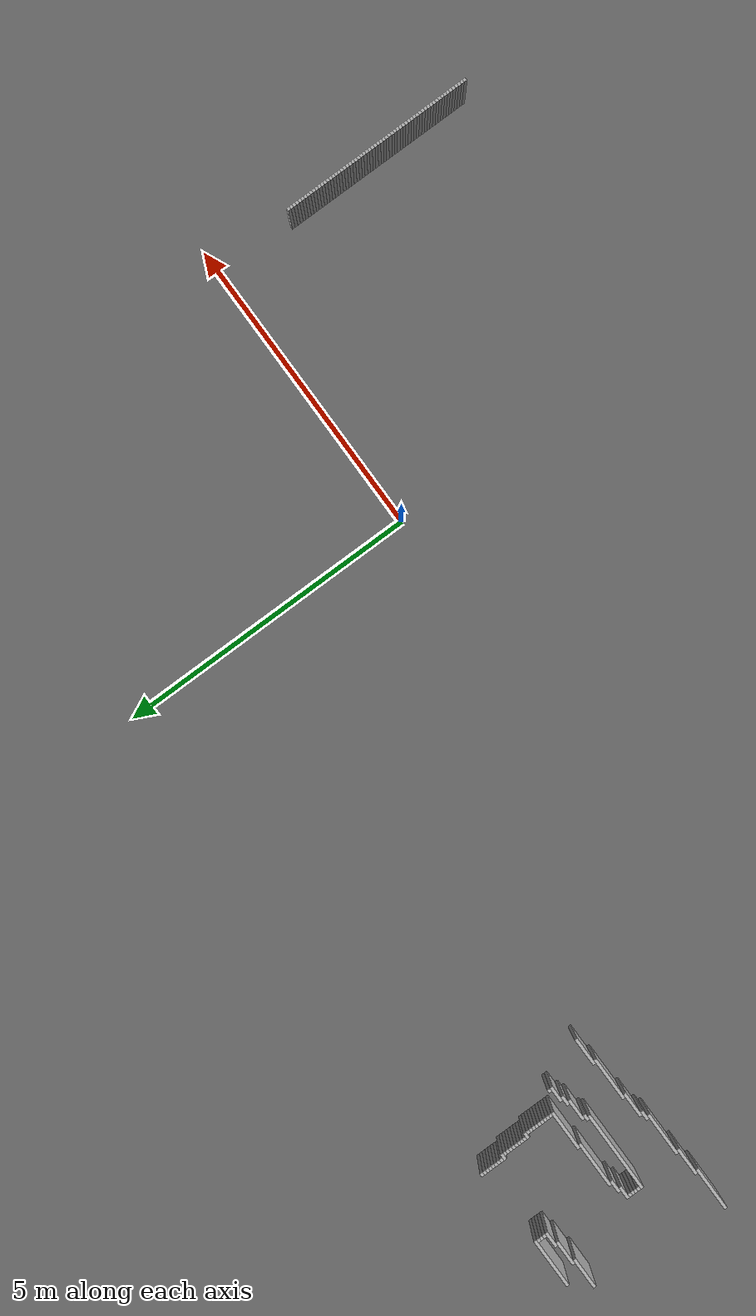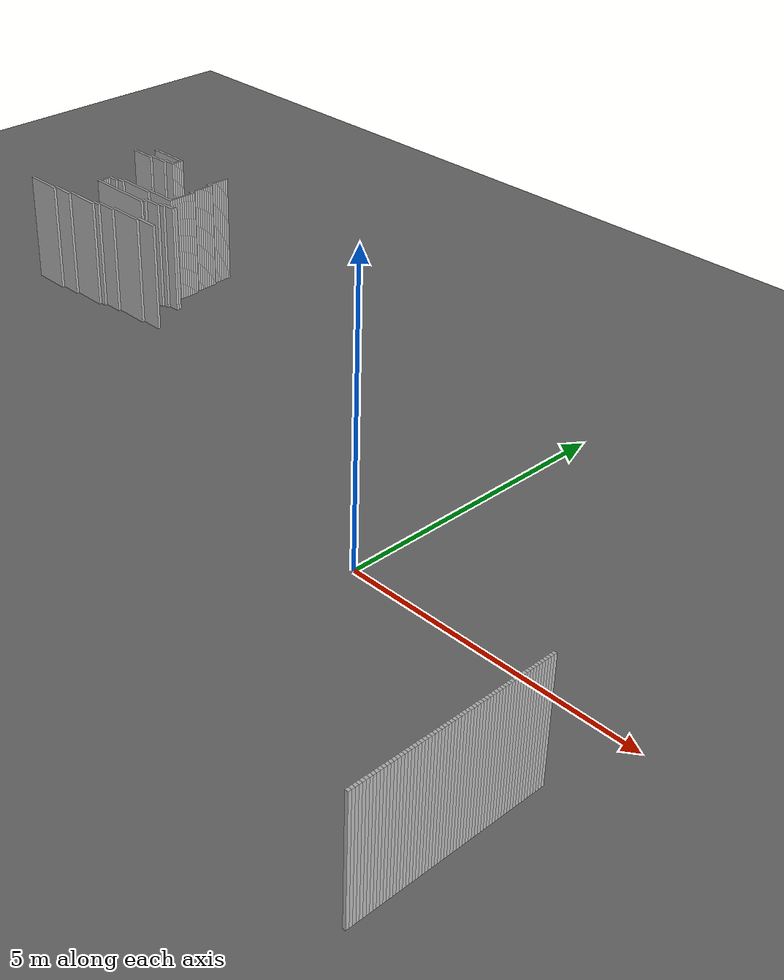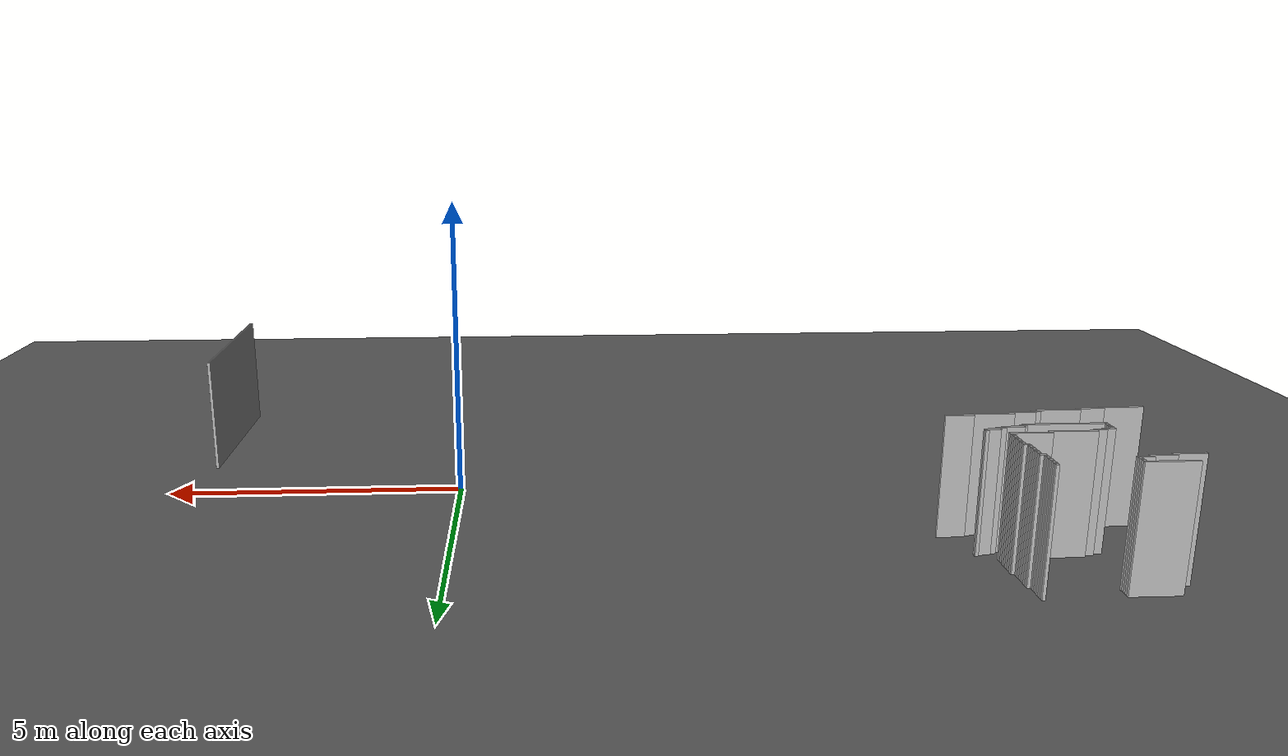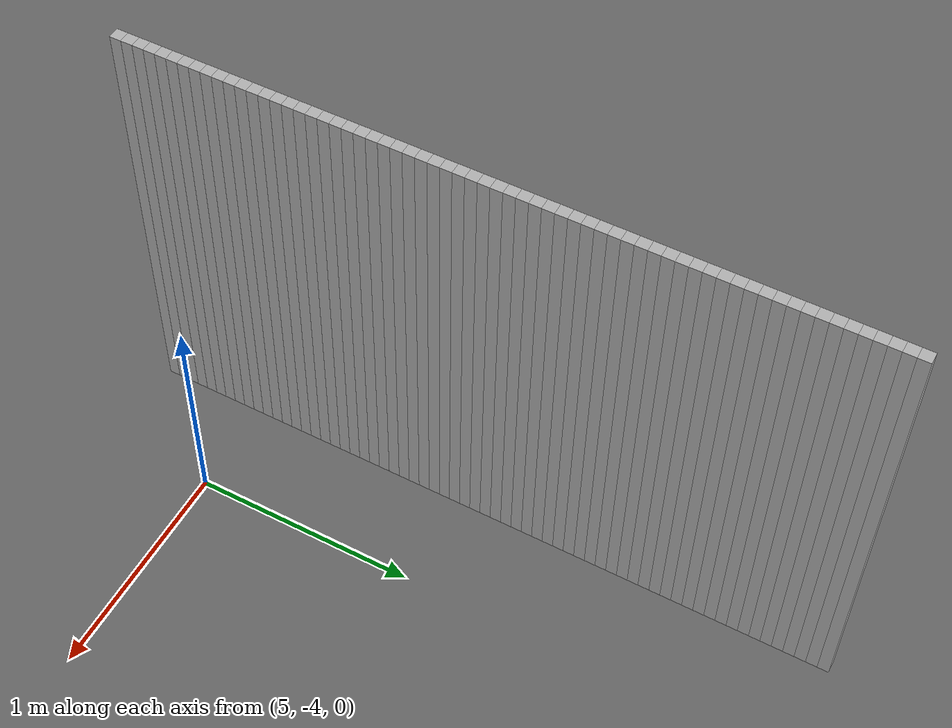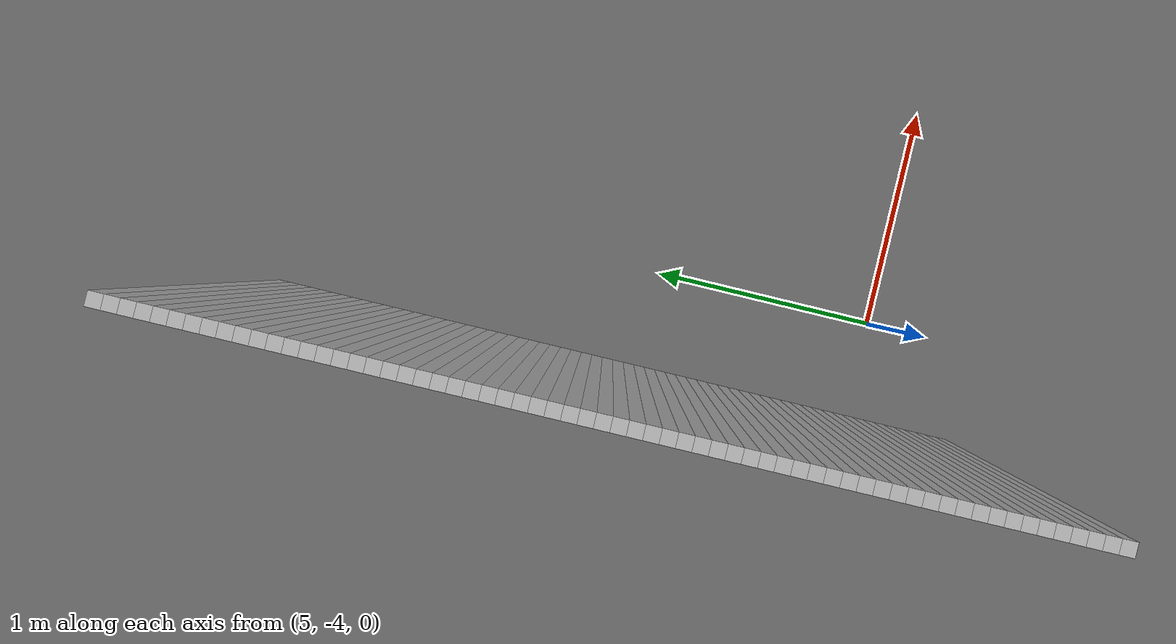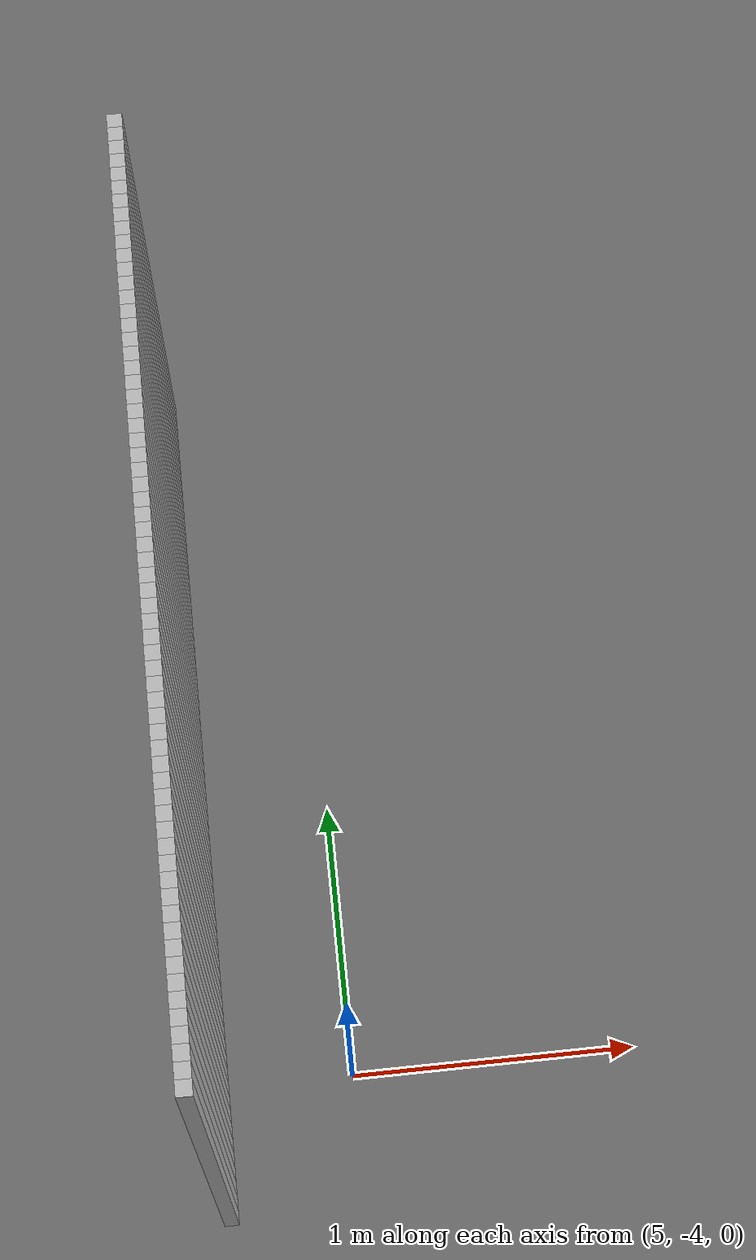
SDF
<sdf version="1.8">
 <world name="real_map">
  <model name="ground">
   <static>true</static>
   <link name="l">
    <collision name="c"><geometry><plane><normal>0 0 1</normal><size>100 100</size></plane></geometry></collision>
    <visual name="v">
     <geometry><plane><normal>0 0 1</normal><size>100 100</size></plane></geometry>
     <material><ambient>0.3 0.3 0.3 1</ambient><diffuse>0.4 0.4 0.4 1</diffuse></material>
    </visual>
   </link>
  </model>
  <model name="walls">
   <static>true</static>
   <link name="w840">
    <pose>-8.366 4.692 1.000 0 0 0</pose>
    <collision name="c"><geometry><box><size>0.050 0.050 2.000</size></box></geometry></collision>
    <visual name="v">
     <geometry><box><size>0.050 0.050 2.000</size></box></geometry>
     <material><ambient>0.7 0.7 0.7 1</ambient><diffuse>0.7 0.7 0.7 1</diffuse></material>
    </visual>
   </link>
   <link name="w844">
    <pose>-9.991 4.642 1.000 0 0 0</pose>
    <collision name="c"><geometry><box><size>0.800 0.050 2.000</size></box></geometry></collision>
    <visual name="v">
     <geometry><box><size>0.800 0.050 2.000</size></box></geometry>
     <material><ambient>0.7 0.7 0.7 1</ambient><diffuse>0.7 0.7 0.7 1</diffuse></material>
    </visual>
   </link>
   <link name="w845">
    <pose>-8.366 4.642 1.000 0 0 0</pose>
    <collision name="c"><geometry><box><size>0.050 0.050 2.000</size></box></geometry></collision>
    <visual name="v">
     <geometry><box><size>0.050 0.050 2.000</size></box></geometry>
     <material><ambient>0.7 0.7 0.7 1</ambient><diffuse>0.7 0.7 0.7 1</diffuse></material>
    </visual>
   </link>
   <link name="w851">
    <pose>-9.616 4.592 1.000 0 0 0</pose>
    <collision name="c"><geometry><box><size>0.050 0.050 2.000</size></box></geometry></collision>
    <visual name="v">
     <geometry><box><size>0.050 0.050 2.000</size></box></geometry>
     <material><ambient>0.7 0.7 0.7 1</ambient><diffuse>0.7 0.7 0.7 1</diffuse></material>
    </visual>
   </link>
   <link name="w852">
    <pose>-8.366 4.592 1.000 0 0 0</pose>
    <collision name="c"><geometry><box><size>0.050 0.050 2.000</size></box></geometry></collision>
    <visual name="v">
     <geometry><box><size>0.050 0.050 2.000</size></box></geometry>
     <material><ambient>0.7 0.7 0.7 1</ambient><diffuse>0.7 0.7 0.7 1</diffuse></material>
    </visual>
   </link>
   <link name="w857">
    <pose>-9.616 4.542 1.000 0 0 0</pose>
    <collision name="c"><geometry><box><size>0.050 0.050 2.000</size></box></geometry></collision>
    <visual name="v">
     <geometry><box><size>0.050 0.050 2.000</size></box></geometry>
     <material><ambient>0.7 0.7 0.7 1</ambient><diffuse>0.7 0.7 0.7 1</diffuse></material>
    </visual>
   </link>
   <link name="w858">
    <pose>-8.366 4.542 1.000 0 0 0</pose>
    <collision name="c"><geometry><box><size>0.050 0.050 2.000</size></box></geometry></collision>
    <visual name="v">
     <geometry><box><size>0.050 0.050 2.000</size></box></geometry>
     <material><ambient>0.7 0.7 0.7 1</ambient><diffuse>0.7 0.7 0.7 1</diffuse></material>
    </visual>
   </link>
   <link name="w861">
    <pose>-9.616 4.492 1.000 0 0 0</pose>
    <collision name="c"><geometry><box><size>0.050 0.050 2.000</size></box></geometry></collision>
    <visual name="v">
     <geometry><box><size>0.050 0.050 2.000</size></box></geometry>
     <material><ambient>0.7 0.7 0.7 1</ambient><diffuse>0.7 0.7 0.7 1</diffuse></material>
    </visual>
   </link>
   <link name="w862">
    <pose>-8.366 4.492 1.000 0 0 0</pose>
    <collision name="c"><geometry><box><size>0.050 0.050 2.000</size></box></geometry></collision>
    <visual name="v">
     <geometry><box><size>0.050 0.050 2.000</size></box></geometry>
     <material><ambient>0.7 0.7 0.7 1</ambient><diffuse>0.7 0.7 0.7 1</diffuse></material>
    </visual>
   </link>
   <link name="w865">
    <pose>-9.716 4.442 1.000 0 0 0</pose>
    <collision name="c"><geometry><box><size>0.250 0.050 2.000</size></box></geometry></collision>
    <visual name="v">
     <geometry><box><size>0.250 0.050 2.000</size></box></geometry>
     <material><ambient>0.7 0.7 0.7 1</ambient><diffuse>0.7 0.7 0.7 1</diffuse></material>
    </visual>
   </link>
   <link name="w866">
    <pose>-8.366 4.442 1.000 0 0 0</pose>
    <collision name="c"><geometry><box><size>0.050 0.050 2.000</size></box></geometry></collision>
    <visual name="v">
     <geometry><box><size>0.050 0.050 2.000</size></box></geometry>
     <material><ambient>0.7 0.7 0.7 1</ambient><diffuse>0.7 0.7 0.7 1</diffuse></material>
    </visual>
   </link>
   <link name="w869">
    <pose>-9.991 4.392 1.000 0 0 0</pose>
    <collision name="c"><geometry><box><size>0.400 0.050 2.000</size></box></geometry></collision>
    <visual name="v">
     <geometry><box><size>0.400 0.050 2.000</size></box></geometry>
     <material><ambient>0.7 0.7 0.7 1</ambient><diffuse>0.7 0.7 0.7 1</diffuse></material>
    </visual>
   </link>
   <link name="w870">
    <pose>-8.366 4.392 1.000 0 0 0</pose>
    <collision name="c"><geometry><box><size>0.050 0.050 2.000</size></box></geometry></collision>
    <visual name="v">
     <geometry><box><size>0.050 0.050 2.000</size></box></geometry>
     <material><ambient>0.7 0.7 0.7 1</ambient><diffuse>0.7 0.7 0.7 1</diffuse></material>
    </visual>
   </link>
   <link name="w873">
    <pose>-10.391 4.342 1.000 0 0 0</pose>
    <collision name="c"><geometry><box><size>0.500 0.050 2.000</size></box></geometry></collision>
    <visual name="v">
     <geometry><box><size>0.500 0.050 2.000</size></box></geometry>
     <material><ambient>0.7 0.7 0.7 1</ambient><diffuse>0.7 0.7 0.7 1</diffuse></material>
    </visual>
   </link>
   <link name="w874">
    <pose>-8.366 4.342 1.000 0 0 0</pose>
    <collision name="c"><geometry><box><size>0.050 0.050 2.000</size></box></geometry></collision>
    <visual name="v">
     <geometry><box><size>0.050 0.050 2.000</size></box></geometry>
     <material><ambient>0.7 0.7 0.7 1</ambient><diffuse>0.7 0.7 0.7 1</diffuse></material>
    </visual>
   </link>
   <link name="w878">
    <pose>-8.341 4.292 1.000 0 0 0</pose>
    <collision name="c"><geometry><box><size>0.100 0.050 2.000</size></box></geometry></collision>
    <visual name="v">
     <geometry><box><size>0.100 0.050 2.000</size></box></geometry>
     <material><ambient>0.7 0.7 0.7 1</ambient><diffuse>0.7 0.7 0.7 1</diffuse></material>
    </visual>
   </link>
   <link name="w882">
    <pose>-8.316 4.242 1.000 0 0 0</pose>
    <collision name="c"><geometry><box><size>0.050 0.050 2.000</size></box></geometry></collision>
    <visual name="v">
     <geometry><box><size>0.050 0.050 2.000</size></box></geometry>
     <material><ambient>0.7 0.7 0.7 1</ambient><diffuse>0.7 0.7 0.7 1</diffuse></material>
    </visual>
   </link>
   <link name="w886">
    <pose>-8.316 4.192 1.000 0 0 0</pose>
    <collision name="c"><geometry><box><size>0.050 0.050 2.000</size></box></geometry></collision>
    <visual name="v">
     <geometry><box><size>0.050 0.050 2.000</size></box></geometry>
     <material><ambient>0.7 0.7 0.7 1</ambient><diffuse>0.7 0.7 0.7 1</diffuse></material>
    </visual>
   </link>
   <link name="w890">
    <pose>-8.316 4.142 1.000 0 0 0</pose>
    <collision name="c"><geometry><box><size>0.050 0.050 2.000</size></box></geometry></collision>
    <visual name="v">
     <geometry><box><size>0.050 0.050 2.000</size></box></geometry>
     <material><ambient>0.7 0.7 0.7 1</ambient><diffuse>0.7 0.7 0.7 1</diffuse></material>
    </visual>
   </link>
   <link name="w894">
    <pose>-8.316 4.092 1.000 0 0 0</pose>
    <collision name="c"><geometry><box><size>0.050 0.050 2.000</size></box></geometry></collision>
    <visual name="v">
     <geometry><box><size>0.050 0.050 2.000</size></box></geometry>
     <material><ambient>0.7 0.7 0.7 1</ambient><diffuse>0.7 0.7 0.7 1</diffuse></material>
    </visual>
   </link>
   <link name="w898">
    <pose>-8.316 4.042 1.000 0 0 0</pose>
    <collision name="c"><geometry><box><size>0.050 0.050 2.000</size></box></geometry></collision>
    <visual name="v">
     <geometry><box><size>0.050 0.050 2.000</size></box></geometry>
     <material><ambient>0.7 0.7 0.7 1</ambient><diffuse>0.7 0.7 0.7 1</diffuse></material>
    </visual>
   </link>
   <link name="w902">
    <pose>-8.316 3.992 1.000 0 0 0</pose>
    <collision name="c"><geometry><box><size>0.050 0.050 2.000</size></box></geometry></collision>
    <visual name="v">
     <geometry><box><size>0.050 0.050 2.000</size></box></geometry>
     <material><ambient>0.7 0.7 0.7 1</ambient><diffuse>0.7 0.7 0.7 1</diffuse></material>
    </visual>
   </link>
   <link name="w906">
    <pose>-8.316 3.942 1.000 0 0 0</pose>
    <collision name="c"><geometry><box><size>0.050 0.050 2.000</size></box></geometry></collision>
    <visual name="v">
     <geometry><box><size>0.050 0.050 2.000</size></box></geometry>
     <material><ambient>0.7 0.7 0.7 1</ambient><diffuse>0.7 0.7 0.7 1</diffuse></material>
    </visual>
   </link>
   <link name="w910">
    <pose>-8.316 3.892 1.000 0 0 0</pose>
    <collision name="c"><geometry><box><size>0.050 0.050 2.000</size></box></geometry></collision>
    <visual name="v">
     <geometry><box><size>0.050 0.050 2.000</size></box></geometry>
     <material><ambient>0.7 0.7 0.7 1</ambient><diffuse>0.7 0.7 0.7 1</diffuse></material>
    </visual>
   </link>
   <link name="w914">
    <pose>-8.291 3.842 1.000 0 0 0</pose>
    <collision name="c"><geometry><box><size>0.100 0.050 2.000</size></box></geometry></collision>
    <visual name="v">
     <geometry><box><size>0.100 0.050 2.000</size></box></geometry>
     <material><ambient>0.7 0.7 0.7 1</ambient><diffuse>0.7 0.7 0.7 1</diffuse></material>
    </visual>
   </link>
   <link name="w918">
    <pose>-8.266 3.792 1.000 0 0 0</pose>
    <collision name="c"><geometry><box><size>0.050 0.050 2.000</size></box></geometry></collision>
    <visual name="v">
     <geometry><box><size>0.050 0.050 2.000</size></box></geometry>
     <material><ambient>0.7 0.7 0.7 1</ambient><diffuse>0.7 0.7 0.7 1</diffuse></material>
    </visual>
   </link>
   <link name="w922">
    <pose>-8.266 3.742 1.000 0 0 0</pose>
    <collision name="c"><geometry><box><size>0.050 0.050 2.000</size></box></geometry></collision>
    <visual name="v">
     <geometry><box><size>0.050 0.050 2.000</size></box></geometry>
     <material><ambient>0.7 0.7 0.7 1</ambient><diffuse>0.7 0.7 0.7 1</diffuse></material>
    </visual>
   </link>
   <link name="w926">
    <pose>-8.266 3.692 1.000 0 0 0</pose>
    <collision name="c"><geometry><box><size>0.050 0.050 2.000</size></box></geometry></collision>
    <visual name="v">
     <geometry><box><size>0.050 0.050 2.000</size></box></geometry>
     <material><ambient>0.7 0.7 0.7 1</ambient><diffuse>0.7 0.7 0.7 1</diffuse></material>
    </visual>
   </link>
   <link name="w930">
    <pose>-8.266 3.642 1.000 0 0 0</pose>
    <collision name="c"><geometry><box><size>0.050 0.050 2.000</size></box></geometry></collision>
    <visual name="v">
     <geometry><box><size>0.050 0.050 2.000</size></box></geometry>
     <material><ambient>0.7 0.7 0.7 1</ambient><diffuse>0.7 0.7 0.7 1</diffuse></material>
    </visual>
   </link>
   <link name="w934">
    <pose>-8.266 3.592 1.000 0 0 0</pose>
    <collision name="c"><geometry><box><size>0.050 0.050 2.000</size></box></geometry></collision>
    <visual name="v">
     <geometry><box><size>0.050 0.050 2.000</size></box></geometry>
     <material><ambient>0.7 0.7 0.7 1</ambient><diffuse>0.7 0.7 0.7 1</diffuse></material>
    </visual>
   </link>
   <link name="w938">
    <pose>-8.266 3.542 1.000 0 0 0</pose>
    <collision name="c"><geometry><box><size>0.050 0.050 2.000</size></box></geometry></collision>
    <visual name="v">
     <geometry><box><size>0.050 0.050 2.000</size></box></geometry>
     <material><ambient>0.7 0.7 0.7 1</ambient><diffuse>0.7 0.7 0.7 1</diffuse></material>
    </visual>
   </link>
   <link name="w942">
    <pose>-8.266 3.492 1.000 0 0 0</pose>
    <collision name="c"><geometry><box><size>0.050 0.050 2.000</size></box></geometry></collision>
    <visual name="v">
     <geometry><box><size>0.050 0.050 2.000</size></box></geometry>
     <material><ambient>0.7 0.7 0.7 1</ambient><diffuse>0.7 0.7 0.7 1</diffuse></material>
    </visual>
   </link>
   <link name="w946">
    <pose>-8.266 3.442 1.000 0 0 0</pose>
    <collision name="c"><geometry><box><size>0.050 0.050 2.000</size></box></geometry></collision>
    <visual name="v">
     <geometry><box><size>0.050 0.050 2.000</size></box></geometry>
     <material><ambient>0.7 0.7 0.7 1</ambient><diffuse>0.7 0.7 0.7 1</diffuse></material>
    </visual>
   </link>
   <link name="w950">
    <pose>-8.266 3.392 1.000 0 0 0</pose>
    <collision name="c"><geometry><box><size>0.050 0.050 2.000</size></box></geometry></collision>
    <visual name="v">
     <geometry><box><size>0.050 0.050 2.000</size></box></geometry>
     <material><ambient>0.7 0.7 0.7 1</ambient><diffuse>0.7 0.7 0.7 1</diffuse></material>
    </visual>
   </link>
   <link name="w954">
    <pose>-8.566 3.342 1.000 0 0 0</pose>
    <collision name="c"><geometry><box><size>0.650 0.050 2.000</size></box></geometry></collision>
    <visual name="v">
     <geometry><box><size>0.650 0.050 2.000</size></box></geometry>
     <material><ambient>0.7 0.7 0.7 1</ambient><diffuse>0.7 0.7 0.7 1</diffuse></material>
    </visual>
   </link>
   <link name="w958">
    <pose>-9.216 3.292 1.000 0 0 0</pose>
    <collision name="c"><geometry><box><size>0.750 0.050 2.000</size></box></geometry></collision>
    <visual name="v">
     <geometry><box><size>0.750 0.050 2.000</size></box></geometry>
     <material><ambient>0.7 0.7 0.7 1</ambient><diffuse>0.7 0.7 0.7 1</diffuse></material>
    </visual>
   </link>
   <link name="w962">
    <pose>-9.641 3.242 1.000 0 0 0</pose>
    <collision name="c"><geometry><box><size>0.200 0.050 2.000</size></box></geometry></collision>
    <visual name="v">
     <geometry><box><size>0.200 0.050 2.000</size></box></geometry>
     <material><ambient>0.7 0.7 0.7 1</ambient><diffuse>0.7 0.7 0.7 1</diffuse></material>
    </visual>
   </link>
   <link name="w966">
    <pose>-9.791 3.192 1.000 0 0 0</pose>
    <collision name="c"><geometry><box><size>0.200 0.050 2.000</size></box></geometry></collision>
    <visual name="v">
     <geometry><box><size>0.200 0.050 2.000</size></box></geometry>
     <material><ambient>0.7 0.7 0.7 1</ambient><diffuse>0.7 0.7 0.7 1</diffuse></material>
    </visual>
   </link>
   <link name="w967">
    <pose>-7.966 3.192 1.000 0 0 0</pose>
    <collision name="c"><geometry><box><size>0.050 0.050 2.000</size></box></geometry></collision>
    <visual name="v">
     <geometry><box><size>0.050 0.050 2.000</size></box></geometry>
     <material><ambient>0.7 0.7 0.7 1</ambient><diffuse>0.7 0.7 0.7 1</diffuse></material>
    </visual>
   </link>
   <link name="w971">
    <pose>-9.866 3.142 1.000 0 0 0</pose>
    <collision name="c"><geometry><box><size>0.050 0.050 2.000</size></box></geometry></collision>
    <visual name="v">
     <geometry><box><size>0.050 0.050 2.000</size></box></geometry>
     <material><ambient>0.7 0.7 0.7 1</ambient><diffuse>0.7 0.7 0.7 1</diffuse></material>
    </visual>
   </link>
   <link name="w972">
    <pose>-8.066 3.142 1.000 0 0 0</pose>
    <collision name="c"><geometry><box><size>0.250 0.050 2.000</size></box></geometry></collision>
    <visual name="v">
     <geometry><box><size>0.250 0.050 2.000</size></box></geometry>
     <material><ambient>0.7 0.7 0.7 1</ambient><diffuse>0.7 0.7 0.7 1</diffuse></material>
    </visual>
   </link>
   <link name="w976">
    <pose>-9.866 3.092 1.000 0 0 0</pose>
    <collision name="c"><geometry><box><size>0.050 0.050 2.000</size></box></geometry></collision>
    <visual name="v">
     <geometry><box><size>0.050 0.050 2.000</size></box></geometry>
     <material><ambient>0.7 0.7 0.7 1</ambient><diffuse>0.7 0.7 0.7 1</diffuse></material>
    </visual>
   </link>
   <link name="w977">
    <pose>-8.216 3.092 1.000 0 0 0</pose>
    <collision name="c"><geometry><box><size>0.150 0.050 2.000</size></box></geometry></collision>
    <visual name="v">
     <geometry><box><size>0.150 0.050 2.000</size></box></geometry>
     <material><ambient>0.7 0.7 0.7 1</ambient><diffuse>0.7 0.7 0.7 1</diffuse></material>
    </visual>
   </link>
   <link name="w981">
    <pose>-9.866 3.042 1.000 0 0 0</pose>
    <collision name="c"><geometry><box><size>0.050 0.050 2.000</size></box></geometry></collision>
    <visual name="v">
     <geometry><box><size>0.050 0.050 2.000</size></box></geometry>
     <material><ambient>0.7 0.7 0.7 1</ambient><diffuse>0.7 0.7 0.7 1</diffuse></material>
    </visual>
   </link>
   <link name="w982">
    <pose>-8.416 3.042 1.000 0 0 0</pose>
    <collision name="c"><geometry><box><size>0.350 0.050 2.000</size></box></geometry></collision>
    <visual name="v">
     <geometry><box><size>0.350 0.050 2.000</size></box></geometry>
     <material><ambient>0.7 0.7 0.7 1</ambient><diffuse>0.7 0.7 0.7 1</diffuse></material>
    </visual>
   </link>
   <link name="w986">
    <pose>-9.866 2.992 1.000 0 0 0</pose>
    <collision name="c"><geometry><box><size>0.050 0.050 2.000</size></box></geometry></collision>
    <visual name="v">
     <geometry><box><size>0.050 0.050 2.000</size></box></geometry>
     <material><ambient>0.7 0.7 0.7 1</ambient><diffuse>0.7 0.7 0.7 1</diffuse></material>
    </visual>
   </link>
   <link name="w987">
    <pose>-8.591 2.992 1.000 0 0 0</pose>
    <collision name="c"><geometry><box><size>0.100 0.050 2.000</size></box></geometry></collision>
    <visual name="v">
     <geometry><box><size>0.100 0.050 2.000</size></box></geometry>
     <material><ambient>0.7 0.7 0.7 1</ambient><diffuse>0.7 0.7 0.7 1</diffuse></material>
    </visual>
   </link>
   <link name="w991">
    <pose>-9.241 2.942 1.000 0 0 0</pose>
    <collision name="c"><geometry><box><size>1.300 0.050 2.000</size></box></geometry></collision>
    <visual name="v">
     <geometry><box><size>1.300 0.050 2.000</size></box></geometry>
     <material><ambient>0.7 0.7 0.7 1</ambient><diffuse>0.7 0.7 0.7 1</diffuse></material>
    </visual>
   </link>
   <link name="w1022">
    <pose>-7.816 2.442 1.000 0 0 0</pose>
    <collision name="c"><geometry><box><size>0.450 0.050 2.000</size></box></geometry></collision>
    <visual name="v">
     <geometry><box><size>0.450 0.050 2.000</size></box></geometry>
     <material><ambient>0.7 0.7 0.7 1</ambient><diffuse>0.7 0.7 0.7 1</diffuse></material>
    </visual>
   </link>
   <link name="w1026">
    <pose>-8.341 2.392 1.000 0 0 0</pose>
    <collision name="c"><geometry><box><size>0.700 0.050 2.000</size></box></geometry></collision>
    <visual name="v">
     <geometry><box><size>0.700 0.050 2.000</size></box></geometry>
     <material><ambient>0.7 0.7 0.7 1</ambient><diffuse>0.7 0.7 0.7 1</diffuse></material>
    </visual>
   </link>
   <link name="w1030">
    <pose>-8.841 2.342 1.000 0 0 0</pose>
    <collision name="c"><geometry><box><size>0.400 0.050 2.000</size></box></geometry></collision>
    <visual name="v">
     <geometry><box><size>0.400 0.050 2.000</size></box></geometry>
     <material><ambient>0.7 0.7 0.7 1</ambient><diffuse>0.7 0.7 0.7 1</diffuse></material>
    </visual>
   </link>
   <link name="w1034">
    <pose>-9.066 2.292 1.000 0 0 0</pose>
    <collision name="c"><geometry><box><size>0.150 0.050 2.000</size></box></geometry></collision>
    <visual name="v">
     <geometry><box><size>0.150 0.050 2.000</size></box></geometry>
     <material><ambient>0.7 0.7 0.7 1</ambient><diffuse>0.7 0.7 0.7 1</diffuse></material>
    </visual>
   </link>
   <link name="w1038">
    <pose>-9.441 2.242 1.000 0 0 0</pose>
    <collision name="c"><geometry><box><size>0.700 0.050 2.000</size></box></geometry></collision>
    <visual name="v">
     <geometry><box><size>0.700 0.050 2.000</size></box></geometry>
     <material><ambient>0.7 0.7 0.7 1</ambient><diffuse>0.7 0.7 0.7 1</diffuse></material>
    </visual>
   </link>
   <link name="w1042">
    <pose>-9.966 2.192 1.000 0 0 0</pose>
    <collision name="c"><geometry><box><size>0.450 0.050 2.000</size></box></geometry></collision>
    <visual name="v">
     <geometry><box><size>0.450 0.050 2.000</size></box></geometry>
     <material><ambient>0.7 0.7 0.7 1</ambient><diffuse>0.7 0.7 0.7 1</diffuse></material>
    </visual>
   </link>
   <link name="w1046">
    <pose>-10.491 2.142 1.000 0 0 0</pose>
    <collision name="c"><geometry><box><size>0.700 0.050 2.000</size></box></geometry></collision>
    <visual name="v">
     <geometry><box><size>0.700 0.050 2.000</size></box></geometry>
     <material><ambient>0.7 0.7 0.7 1</ambient><diffuse>0.7 0.7 0.7 1</diffuse></material>
    </visual>
   </link>
   <link name="w1188">
    <pose>4.534 -1.308 1.000 0 0 0</pose>
    <collision name="c"><geometry><box><size>0.050 0.050 2.000</size></box></geometry></collision>
    <visual name="v">
     <geometry><box><size>0.050 0.050 2.000</size></box></geometry>
     <material><ambient>0.7 0.7 0.7 1</ambient><diffuse>0.7 0.7 0.7 1</diffuse></material>
    </visual>
   </link>
   <link name="w1190">
    <pose>4.534 -1.358 1.000 0 0 0</pose>
    <collision name="c"><geometry><box><size>0.050 0.050 2.000</size></box></geometry></collision>
    <visual name="v">
     <geometry><box><size>0.050 0.050 2.000</size></box></geometry>
     <material><ambient>0.7 0.7 0.7 1</ambient><diffuse>0.7 0.7 0.7 1</diffuse></material>
    </visual>
   </link>
   <link name="w1192">
    <pose>4.534 -1.408 1.000 0 0 0</pose>
    <collision name="c"><geometry><box><size>0.050 0.050 2.000</size></box></geometry></collision>
    <visual name="v">
     <geometry><box><size>0.050 0.050 2.000</size></box></geometry>
     <material><ambient>0.7 0.7 0.7 1</ambient><diffuse>0.7 0.7 0.7 1</diffuse></material>
    </visual>
   </link>
   <link name="w1194">
    <pose>4.534 -1.458 1.000 0 0 0</pose>
    <collision name="c"><geometry><box><size>0.050 0.050 2.000</size></box></geometry></collision>
    <visual name="v">
     <geometry><box><size>0.050 0.050 2.000</size></box></geometry>
     <material><ambient>0.7 0.7 0.7 1</ambient><diffuse>0.7 0.7 0.7 1</diffuse></material>
    </visual>
   </link>
   <link name="w1196">
    <pose>4.534 -1.508 1.000 0 0 0</pose>
    <collision name="c"><geometry><box><size>0.050 0.050 2.000</size></box></geometry></collision>
    <visual name="v">
     <geometry><box><size>0.050 0.050 2.000</size></box></geometry>
     <material><ambient>0.7 0.7 0.7 1</ambient><diffuse>0.7 0.7 0.7 1</diffuse></material>
    </visual>
   </link>
   <link name="w1198">
    <pose>4.534 -1.558 1.000 0 0 0</pose>
    <collision name="c"><geometry><box><size>0.050 0.050 2.000</size></box></geometry></collision>
    <visual name="v">
     <geometry><box><size>0.050 0.050 2.000</size></box></geometry>
     <material><ambient>0.7 0.7 0.7 1</ambient><diffuse>0.7 0.7 0.7 1</diffuse></material>
    </visual>
   </link>
   <link name="w1200">
    <pose>4.534 -1.608 1.000 0 0 0</pose>
    <collision name="c"><geometry><box><size>0.050 0.050 2.000</size></box></geometry></collision>
    <visual name="v">
     <geometry><box><size>0.050 0.050 2.000</size></box></geometry>
     <material><ambient>0.7 0.7 0.7 1</ambient><diffuse>0.7 0.7 0.7 1</diffuse></material>
    </visual>
   </link>
   <link name="w1202">
    <pose>4.534 -1.658 1.000 0 0 0</pose>
    <collision name="c"><geometry><box><size>0.050 0.050 2.000</size></box></geometry></collision>
    <visual name="v">
     <geometry><box><size>0.050 0.050 2.000</size></box></geometry>
     <material><ambient>0.7 0.7 0.7 1</ambient><diffuse>0.7 0.7 0.7 1</diffuse></material>
    </visual>
   </link>
   <link name="w1204">
    <pose>4.534 -1.708 1.000 0 0 0</pose>
    <collision name="c"><geometry><box><size>0.050 0.050 2.000</size></box></geometry></collision>
    <visual name="v">
     <geometry><box><size>0.050 0.050 2.000</size></box></geometry>
     <material><ambient>0.7 0.7 0.7 1</ambient><diffuse>0.7 0.7 0.7 1</diffuse></material>
    </visual>
   </link>
   <link name="w1206">
    <pose>4.534 -1.758 1.000 0 0 0</pose>
    <collision name="c"><geometry><box><size>0.050 0.050 2.000</size></box></geometry></collision>
    <visual name="v">
     <geometry><box><size>0.050 0.050 2.000</size></box></geometry>
     <material><ambient>0.7 0.7 0.7 1</ambient><diffuse>0.7 0.7 0.7 1</diffuse></material>
    </visual>
   </link>
   <link name="w1208">
    <pose>4.534 -1.808 1.000 0 0 0</pose>
    <collision name="c"><geometry><box><size>0.050 0.050 2.000</size></box></geometry></collision>
    <visual name="v">
     <geometry><box><size>0.050 0.050 2.000</size></box></geometry>
     <material><ambient>0.7 0.7 0.7 1</ambient><diffuse>0.7 0.7 0.7 1</diffuse></material>
    </visual>
   </link>
   <link name="w1210">
    <pose>4.534 -1.858 1.000 0 0 0</pose>
    <collision name="c"><geometry><box><size>0.050 0.050 2.000</size></box></geometry></collision>
    <visual name="v">
     <geometry><box><size>0.050 0.050 2.000</size></box></geometry>
     <material><ambient>0.7 0.7 0.7 1</ambient><diffuse>0.7 0.7 0.7 1</diffuse></material>
    </visual>
   </link>
   <link name="w1212">
    <pose>4.534 -1.908 1.000 0 0 0</pose>
    <collision name="c"><geometry><box><size>0.050 0.050 2.000</size></box></geometry></collision>
    <visual name="v">
     <geometry><box><size>0.050 0.050 2.000</size></box></geometry>
     <material><ambient>0.7 0.7 0.7 1</ambient><diffuse>0.7 0.7 0.7 1</diffuse></material>
    </visual>
   </link>
   <link name="w1214">
    <pose>4.534 -1.958 1.000 0 0 0</pose>
    <collision name="c"><geometry><box><size>0.050 0.050 2.000</size></box></geometry></collision>
    <visual name="v">
     <geometry><box><size>0.050 0.050 2.000</size></box></geometry>
     <material><ambient>0.7 0.7 0.7 1</ambient><diffuse>0.7 0.7 0.7 1</diffuse></material>
    </visual>
   </link>
   <link name="w1216">
    <pose>4.534 -2.008 1.000 0 0 0</pose>
    <collision name="c"><geometry><box><size>0.050 0.050 2.000</size></box></geometry></collision>
    <visual name="v">
     <geometry><box><size>0.050 0.050 2.000</size></box></geometry>
     <material><ambient>0.7 0.7 0.7 1</ambient><diffuse>0.7 0.7 0.7 1</diffuse></material>
    </visual>
   </link>
   <link name="w1218">
    <pose>4.534 -2.058 1.000 0 0 0</pose>
    <collision name="c"><geometry><box><size>0.050 0.050 2.000</size></box></geometry></collision>
    <visual name="v">
     <geometry><box><size>0.050 0.050 2.000</size></box></geometry>
     <material><ambient>0.7 0.7 0.7 1</ambient><diffuse>0.7 0.7 0.7 1</diffuse></material>
    </visual>
   </link>
   <link name="w1220">
    <pose>4.534 -2.108 1.000 0 0 0</pose>
    <collision name="c"><geometry><box><size>0.050 0.050 2.000</size></box></geometry></collision>
    <visual name="v">
     <geometry><box><size>0.050 0.050 2.000</size></box></geometry>
     <material><ambient>0.7 0.7 0.7 1</ambient><diffuse>0.7 0.7 0.7 1</diffuse></material>
    </visual>
   </link>
   <link name="w1222">
    <pose>4.534 -2.158 1.000 0 0 0</pose>
    <collision name="c"><geometry><box><size>0.050 0.050 2.000</size></box></geometry></collision>
    <visual name="v">
     <geometry><box><size>0.050 0.050 2.000</size></box></geometry>
     <material><ambient>0.7 0.7 0.7 1</ambient><diffuse>0.7 0.7 0.7 1</diffuse></material>
    </visual>
   </link>
   <link name="w1224">
    <pose>4.534 -2.208 1.000 0 0 0</pose>
    <collision name="c"><geometry><box><size>0.050 0.050 2.000</size></box></geometry></collision>
    <visual name="v">
     <geometry><box><size>0.050 0.050 2.000</size></box></geometry>
     <material><ambient>0.7 0.7 0.7 1</ambient><diffuse>0.7 0.7 0.7 1</diffuse></material>
    </visual>
   </link>
   <link name="w1226">
    <pose>4.534 -2.258 1.000 0 0 0</pose>
    <collision name="c"><geometry><box><size>0.050 0.050 2.000</size></box></geometry></collision>
    <visual name="v">
     <geometry><box><size>0.050 0.050 2.000</size></box></geometry>
     <material><ambient>0.7 0.7 0.7 1</ambient><diffuse>0.7 0.7 0.7 1</diffuse></material>
    </visual>
   </link>
   <link name="w1228">
    <pose>4.534 -2.308 1.000 0 0 0</pose>
    <collision name="c"><geometry><box><size>0.050 0.050 2.000</size></box></geometry></collision>
    <visual name="v">
     <geometry><box><size>0.050 0.050 2.000</size></box></geometry>
     <material><ambient>0.7 0.7 0.7 1</ambient><diffuse>0.7 0.7 0.7 1</diffuse></material>
    </visual>
   </link>
   <link name="w1230">
    <pose>4.534 -2.358 1.000 0 0 0</pose>
    <collision name="c"><geometry><box><size>0.050 0.050 2.000</size></box></geometry></collision>
    <visual name="v">
     <geometry><box><size>0.050 0.050 2.000</size></box></geometry>
     <material><ambient>0.7 0.7 0.7 1</ambient><diffuse>0.7 0.7 0.7 1</diffuse></material>
    </visual>
   </link>
   <link name="w1232">
    <pose>4.534 -2.408 1.000 0 0 0</pose>
    <collision name="c"><geometry><box><size>0.050 0.050 2.000</size></box></geometry></collision>
    <visual name="v">
     <geometry><box><size>0.050 0.050 2.000</size></box></geometry>
     <material><ambient>0.7 0.7 0.7 1</ambient><diffuse>0.7 0.7 0.7 1</diffuse></material>
    </visual>
   </link>
   <link name="w1234">
    <pose>4.534 -2.458 1.000 0 0 0</pose>
    <collision name="c"><geometry><box><size>0.050 0.050 2.000</size></box></geometry></collision>
    <visual name="v">
     <geometry><box><size>0.050 0.050 2.000</size></box></geometry>
     <material><ambient>0.7 0.7 0.7 1</ambient><diffuse>0.7 0.7 0.7 1</diffuse></material>
    </visual>
   </link>
   <link name="w1236">
    <pose>4.534 -2.508 1.000 0 0 0</pose>
    <collision name="c"><geometry><box><size>0.050 0.050 2.000</size></box></geometry></collision>
    <visual name="v">
     <geometry><box><size>0.050 0.050 2.000</size></box></geometry>
     <material><ambient>0.7 0.7 0.7 1</ambient><diffuse>0.7 0.7 0.7 1</diffuse></material>
    </visual>
   </link>
   <link name="w1238">
    <pose>4.534 -2.558 1.000 0 0 0</pose>
    <collision name="c"><geometry><box><size>0.050 0.050 2.000</size></box></geometry></collision>
    <visual name="v">
     <geometry><box><size>0.050 0.050 2.000</size></box></geometry>
     <material><ambient>0.7 0.7 0.7 1</ambient><diffuse>0.7 0.7 0.7 1</diffuse></material>
    </visual>
   </link>
   <link name="w1240">
    <pose>4.534 -2.608 1.000 0 0 0</pose>
    <collision name="c"><geometry><box><size>0.050 0.050 2.000</size></box></geometry></collision>
    <visual name="v">
     <geometry><box><size>0.050 0.050 2.000</size></box></geometry>
     <material><ambient>0.7 0.7 0.7 1</ambient><diffuse>0.7 0.7 0.7 1</diffuse></material>
    </visual>
   </link>
   <link name="w1242">
    <pose>4.534 -2.658 1.000 0 0 0</pose>
    <collision name="c"><geometry><box><size>0.050 0.050 2.000</size></box></geometry></collision>
    <visual name="v">
     <geometry><box><size>0.050 0.050 2.000</size></box></geometry>
     <material><ambient>0.7 0.7 0.7 1</ambient><diffuse>0.7 0.7 0.7 1</diffuse></material>
    </visual>
   </link>
   <link name="w1244">
    <pose>4.534 -2.708 1.000 0 0 0</pose>
    <collision name="c"><geometry><box><size>0.050 0.050 2.000</size></box></geometry></collision>
    <visual name="v">
     <geometry><box><size>0.050 0.050 2.000</size></box></geometry>
     <material><ambient>0.7 0.7 0.7 1</ambient><diffuse>0.7 0.7 0.7 1</diffuse></material>
    </visual>
   </link>
   <link name="w1246">
    <pose>4.534 -2.758 1.000 0 0 0</pose>
    <collision name="c"><geometry><box><size>0.050 0.050 2.000</size></box></geometry></collision>
    <visual name="v">
     <geometry><box><size>0.050 0.050 2.000</size></box></geometry>
     <material><ambient>0.7 0.7 0.7 1</ambient><diffuse>0.7 0.7 0.7 1</diffuse></material>
    </visual>
   </link>
   <link name="w1248">
    <pose>4.534 -2.808 1.000 0 0 0</pose>
    <collision name="c"><geometry><box><size>0.050 0.050 2.000</size></box></geometry></collision>
    <visual name="v">
     <geometry><box><size>0.050 0.050 2.000</size></box></geometry>
     <material><ambient>0.7 0.7 0.7 1</ambient><diffuse>0.7 0.7 0.7 1</diffuse></material>
    </visual>
   </link>
   <link name="w1250">
    <pose>4.534 -2.858 1.000 0 0 0</pose>
    <collision name="c"><geometry><box><size>0.050 0.050 2.000</size></box></geometry></collision>
    <visual name="v">
     <geometry><box><size>0.050 0.050 2.000</size></box></geometry>
     <material><ambient>0.7 0.7 0.7 1</ambient><diffuse>0.7 0.7 0.7 1</diffuse></material>
    </visual>
   </link>
   <link name="w1252">
    <pose>4.534 -2.908 1.000 0 0 0</pose>
    <collision name="c"><geometry><box><size>0.050 0.050 2.000</size></box></geometry></collision>
    <visual name="v">
     <geometry><box><size>0.050 0.050 2.000</size></box></geometry>
     <material><ambient>0.7 0.7 0.7 1</ambient><diffuse>0.7 0.7 0.7 1</diffuse></material>
    </visual>
   </link>
   <link name="w1254">
    <pose>4.534 -2.958 1.000 0 0 0</pose>
    <collision name="c"><geometry><box><size>0.050 0.050 2.000</size></box></geometry></collision>
    <visual name="v">
     <geometry><box><size>0.050 0.050 2.000</size></box></geometry>
     <material><ambient>0.7 0.7 0.7 1</ambient><diffuse>0.7 0.7 0.7 1</diffuse></material>
    </visual>
   </link>
   <link name="w1256">
    <pose>4.534 -3.008 1.000 0 0 0</pose>
    <collision name="c"><geometry><box><size>0.050 0.050 2.000</size></box></geometry></collision>
    <visual name="v">
     <geometry><box><size>0.050 0.050 2.000</size></box></geometry>
     <material><ambient>0.7 0.7 0.7 1</ambient><diffuse>0.7 0.7 0.7 1</diffuse></material>
    </visual>
   </link>
   <link name="w1258">
    <pose>4.534 -3.058 1.000 0 0 0</pose>
    <collision name="c"><geometry><box><size>0.050 0.050 2.000</size></box></geometry></collision>
    <visual name="v">
     <geometry><box><size>0.050 0.050 2.000</size></box></geometry>
     <material><ambient>0.7 0.7 0.7 1</ambient><diffuse>0.7 0.7 0.7 1</diffuse></material>
    </visual>
   </link>
   <link name="w1260">
    <pose>4.534 -3.108 1.000 0 0 0</pose>
    <collision name="c"><geometry><box><size>0.050 0.050 2.000</size></box></geometry></collision>
    <visual name="v">
     <geometry><box><size>0.050 0.050 2.000</size></box></geometry>
     <material><ambient>0.7 0.7 0.7 1</ambient><diffuse>0.7 0.7 0.7 1</diffuse></material>
    </visual>
   </link>
   <link name="w1262">
    <pose>4.534 -3.158 1.000 0 0 0</pose>
    <collision name="c"><geometry><box><size>0.050 0.050 2.000</size></box></geometry></collision>
    <visual name="v">
     <geometry><box><size>0.050 0.050 2.000</size></box></geometry>
     <material><ambient>0.7 0.7 0.7 1</ambient><diffuse>0.7 0.7 0.7 1</diffuse></material>
    </visual>
   </link>
   <link name="w1264">
    <pose>4.534 -3.208 1.000 0 0 0</pose>
    <collision name="c"><geometry><box><size>0.050 0.050 2.000</size></box></geometry></collision>
    <visual name="v">
     <geometry><box><size>0.050 0.050 2.000</size></box></geometry>
     <material><ambient>0.7 0.7 0.7 1</ambient><diffuse>0.7 0.7 0.7 1</diffuse></material>
    </visual>
   </link>
   <link name="w1266">
    <pose>4.534 -3.258 1.000 0 0 0</pose>
    <collision name="c"><geometry><box><size>0.050 0.050 2.000</size></box></geometry></collision>
    <visual name="v">
     <geometry><box><size>0.050 0.050 2.000</size></box></geometry>
     <material><ambient>0.7 0.7 0.7 1</ambient><diffuse>0.7 0.7 0.7 1</diffuse></material>
    </visual>
   </link>
   <link name="w1268">
    <pose>4.534 -3.308 1.000 0 0 0</pose>
    <collision name="c"><geometry><box><size>0.050 0.050 2.000</size></box></geometry></collision>
    <visual name="v">
     <geometry><box><size>0.050 0.050 2.000</size></box></geometry>
     <material><ambient>0.7 0.7 0.7 1</ambient><diffuse>0.7 0.7 0.7 1</diffuse></material>
    </visual>
   </link>
   <link name="w1270">
    <pose>4.534 -3.358 1.000 0 0 0</pose>
    <collision name="c"><geometry><box><size>0.050 0.050 2.000</size></box></geometry></collision>
    <visual name="v">
     <geometry><box><size>0.050 0.050 2.000</size></box></geometry>
     <material><ambient>0.7 0.7 0.7 1</ambient><diffuse>0.7 0.7 0.7 1</diffuse></material>
    </visual>
   </link>
   <link name="w1272">
    <pose>4.534 -3.408 1.000 0 0 0</pose>
    <collision name="c"><geometry><box><size>0.050 0.050 2.000</size></box></geometry></collision>
    <visual name="v">
     <geometry><box><size>0.050 0.050 2.000</size></box></geometry>
     <material><ambient>0.7 0.7 0.7 1</ambient><diffuse>0.7 0.7 0.7 1</diffuse></material>
    </visual>
   </link>
   <link name="w1274">
    <pose>4.534 -3.458 1.000 0 0 0</pose>
    <collision name="c"><geometry><box><size>0.050 0.050 2.000</size></box></geometry></collision>
    <visual name="v">
     <geometry><box><size>0.050 0.050 2.000</size></box></geometry>
     <material><ambient>0.7 0.7 0.7 1</ambient><diffuse>0.7 0.7 0.7 1</diffuse></material>
    </visual>
   </link>
   <link name="w1276">
    <pose>4.534 -3.508 1.000 0 0 0</pose>
    <collision name="c"><geometry><box><size>0.050 0.050 2.000</size></box></geometry></collision>
    <visual name="v">
     <geometry><box><size>0.050 0.050 2.000</size></box></geometry>
     <material><ambient>0.7 0.7 0.7 1</ambient><diffuse>0.7 0.7 0.7 1</diffuse></material>
    </visual>
   </link>
   <link name="w1278">
    <pose>4.534 -3.558 1.000 0 0 0</pose>
    <collision name="c"><geometry><box><size>0.050 0.050 2.000</size></box></geometry></collision>
    <visual name="v">
     <geometry><box><size>0.050 0.050 2.000</size></box></geometry>
     <material><ambient>0.7 0.7 0.7 1</ambient><diffuse>0.7 0.7 0.7 1</diffuse></material>
    </visual>
   </link>
   <link name="w1280">
    <pose>4.534 -3.608 1.000 0 0 0</pose>
    <collision name="c"><geometry><box><size>0.050 0.050 2.000</size></box></geometry></collision>
    <visual name="v">
     <geometry><box><size>0.050 0.050 2.000</size></box></geometry>
     <material><ambient>0.7 0.7 0.7 1</ambient><diffuse>0.7 0.7 0.7 1</diffuse></material>
    </visual>
   </link>
   <link name="w1282">
    <pose>4.534 -3.658 1.000 0 0 0</pose>
    <collision name="c"><geometry><box><size>0.050 0.050 2.000</size></box></geometry></collision>
    <visual name="v">
     <geometry><box><size>0.050 0.050 2.000</size></box></geometry>
     <material><ambient>0.7 0.7 0.7 1</ambient><diffuse>0.7 0.7 0.7 1</diffuse></material>
    </visual>
   </link>
   <link name="w1284">
    <pose>4.534 -3.708 1.000 0 0 0</pose>
    <collision name="c"><geometry><box><size>0.050 0.050 2.000</size></box></geometry></collision>
    <visual name="v">
     <geometry><box><size>0.050 0.050 2.000</size></box></geometry>
     <material><ambient>0.7 0.7 0.7 1</ambient><diffuse>0.7 0.7 0.7 1</diffuse></material>
    </visual>
   </link>
   <link name="w1286">
    <pose>4.534 -3.758 1.000 0 0 0</pose>
    <collision name="c"><geometry><box><size>0.050 0.050 2.000</size></box></geometry></collision>
    <visual name="v">
     <geometry><box><size>0.050 0.050 2.000</size></box></geometry>
     <material><ambient>0.7 0.7 0.7 1</ambient><diffuse>0.7 0.7 0.7 1</diffuse></material>
    </visual>
   </link>
   <link name="w1288">
    <pose>4.534 -3.808 1.000 0 0 0</pose>
    <collision name="c"><geometry><box><size>0.050 0.050 2.000</size></box></geometry></collision>
    <visual name="v">
     <geometry><box><size>0.050 0.050 2.000</size></box></geometry>
     <material><ambient>0.7 0.7 0.7 1</ambient><diffuse>0.7 0.7 0.7 1</diffuse></material>
    </visual>
   </link>
   <link name="w1290">
    <pose>4.534 -3.858 1.000 0 0 0</pose>
    <collision name="c"><geometry><box><size>0.050 0.050 2.000</size></box></geometry></collision>
    <visual name="v">
     <geometry><box><size>0.050 0.050 2.000</size></box></geometry>
     <material><ambient>0.7 0.7 0.7 1</ambient><diffuse>0.7 0.7 0.7 1</diffuse></material>
    </visual>
   </link>
   <link name="w1292">
    <pose>4.534 -3.908 1.000 0 0 0</pose>
    <collision name="c"><geometry><box><size>0.050 0.050 2.000</size></box></geometry></collision>
    <visual name="v">
     <geometry><box><size>0.050 0.050 2.000</size></box></geometry>
     <material><ambient>0.7 0.7 0.7 1</ambient><diffuse>0.7 0.7 0.7 1</diffuse></material>
    </visual>
   </link>
   <link name="w1294">
    <pose>4.534 -3.958 1.000 0 0 0</pose>
    <collision name="c"><geometry><box><size>0.050 0.050 2.000</size></box></geometry></collision>
    <visual name="v">
     <geometry><box><size>0.050 0.050 2.000</size></box></geometry>
     <material><ambient>0.7 0.7 0.7 1</ambient><diffuse>0.7 0.7 0.7 1</diffuse></material>
    </visual>
   </link>
   <link name="w1296">
    <pose>4.534 -4.008 1.000 0 0 0</pose>
    <collision name="c"><geometry><box><size>0.050 0.050 2.000</size></box></geometry></collision>
    <visual name="v">
     <geometry><box><size>0.050 0.050 2.000</size></box></geometry>
     <material><ambient>0.7 0.7 0.7 1</ambient><diffuse>0.7 0.7 0.7 1</diffuse></material>
    </visual>
   </link>
   <link name="w1298">
    <pose>4.534 -4.058 1.000 0 0 0</pose>
    <collision name="c"><geometry><box><size>0.050 0.050 2.000</size></box></geometry></collision>
    <visual name="v">
     <geometry><box><size>0.050 0.050 2.000</size></box></geometry>
     <material><ambient>0.7 0.7 0.7 1</ambient><diffuse>0.7 0.7 0.7 1</diffuse></material>
    </visual>
   </link>
   <link name="w1300">
    <pose>4.534 -4.108 1.000 0 0 0</pose>
    <collision name="c"><geometry><box><size>0.050 0.050 2.000</size></box></geometry></collision>
    <visual name="v">
     <geometry><box><size>0.050 0.050 2.000</size></box></geometry>
     <material><ambient>0.7 0.7 0.7 1</ambient><diffuse>0.7 0.7 0.7 1</diffuse></material>
    </visual>
   </link>
   <link name="w1302">
    <pose>4.534 -4.158 1.000 0 0 0</pose>
    <collision name="c"><geometry><box><size>0.050 0.050 2.000</size></box></geometry></collision>
    <visual name="v">
     <geometry><box><size>0.050 0.050 2.000</size></box></geometry>
     <material><ambient>0.7 0.7 0.7 1</ambient><diffuse>0.7 0.7 0.7 1</diffuse></material>
    </visual>
   </link>
   <link name="w1304">
    <pose>4.534 -4.208 1.000 0 0 0</pose>
    <collision name="c"><geometry><box><size>0.050 0.050 2.000</size></box></geometry></collision>
    <visual name="v">
     <geometry><box><size>0.050 0.050 2.000</size></box></geometry>
     <material><ambient>0.7 0.7 0.7 1</ambient><diffuse>0.7 0.7 0.7 1</diffuse></material>
    </visual>
   </link>
   <link name="w1306">
    <pose>4.534 -4.258 1.000 0 0 0</pose>
    <collision name="c"><geometry><box><size>0.050 0.050 2.000</size></box></geometry></collision>
    <visual name="v">
     <geometry><box><size>0.050 0.050 2.000</size></box></geometry>
     <material><ambient>0.7 0.7 0.7 1</ambient><diffuse>0.7 0.7 0.7 1</diffuse></material>
    </visual>
   </link>
   <link name="w1308">
    <pose>4.534 -4.308 1.000 0 0 0</pose>
    <collision name="c"><geometry><box><size>0.050 0.050 2.000</size></box></geometry></collision>
    <visual name="v">
     <geometry><box><size>0.050 0.050 2.000</size></box></geometry>
     <material><ambient>0.7 0.7 0.7 1</ambient><diffuse>0.7 0.7 0.7 1</diffuse></material>
    </visual>
   </link>
   <link name="w1310">
    <pose>4.534 -4.358 1.000 0 0 0</pose>
    <collision name="c"><geometry><box><size>0.050 0.050 2.000</size></box></geometry></collision>
    <visual name="v">
     <geometry><box><size>0.050 0.050 2.000</size></box></geometry>
     <material><ambient>0.7 0.7 0.7 1</ambient><diffuse>0.7 0.7 0.7 1</diffuse></material>
    </visual>
   </link>
   <link name="w1312">
    <pose>4.534 -4.408 1.000 0 0 0</pose>
    <collision name="c"><geometry><box><size>0.050 0.050 2.000</size></box></geometry></collision>
    <visual name="v">
     <geometry><box><size>0.050 0.050 2.000</size></box></geometry>
     <material><ambient>0.7 0.7 0.7 1</ambient><diffuse>0.7 0.7 0.7 1</diffuse></material>
    </visual>
   </link>
   <link name="w1314">
    <pose>4.534 -4.458 1.000 0 0 0</pose>
    <collision name="c"><geometry><box><size>0.050 0.050 2.000</size></box></geometry></collision>
    <visual name="v">
     <geometry><box><size>0.050 0.050 2.000</size></box></geometry>
     <material><ambient>0.7 0.7 0.7 1</ambient><diffuse>0.7 0.7 0.7 1</diffuse></material>
    </visual>
   </link>
  </model>
 </world>
</sdf>
